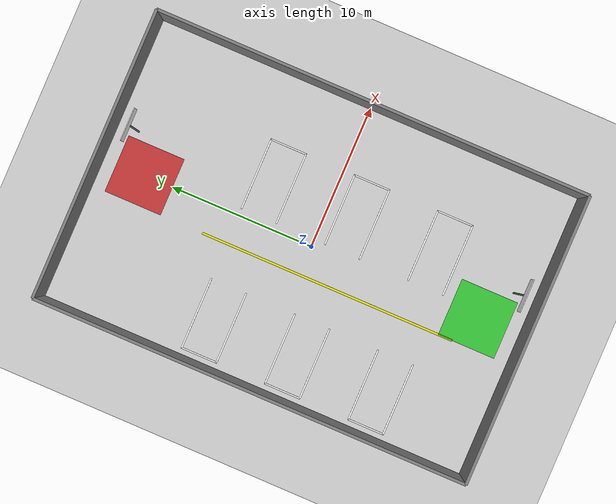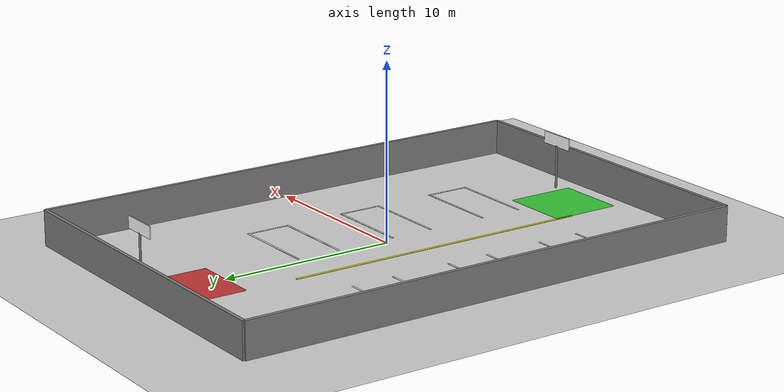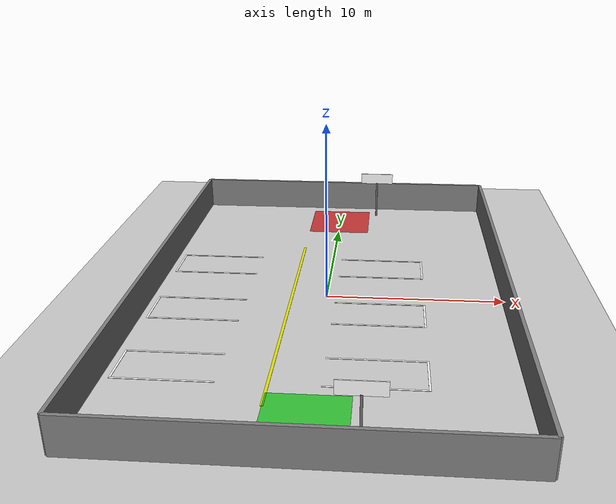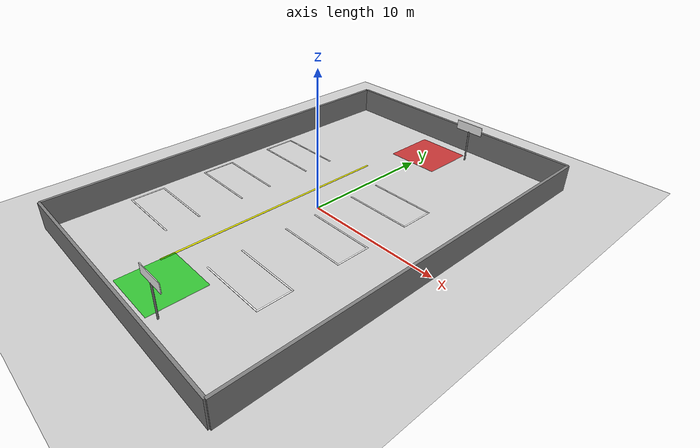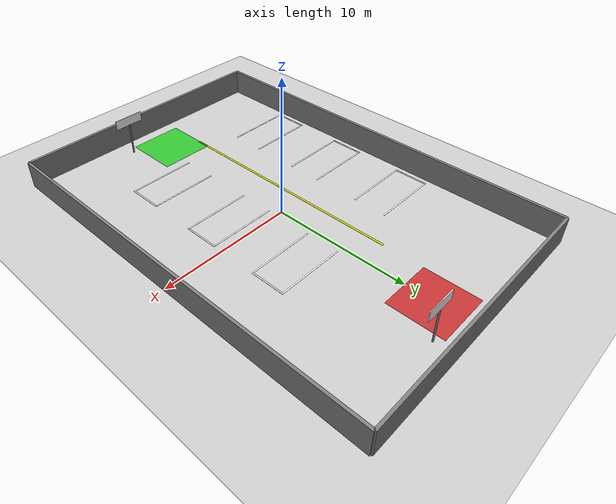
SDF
<sdf version="1.10">
 <world name="parking_world">
  <plugin filename="gz-sim-physics-system" name="gz::sim::systems::Physics"/>
  <plugin filename="gz-sim-scene-broadcaster-system" name="gz::sim::systems::SceneBroadcaster"/>
  <plugin filename="gz-sim-user-commands-system" name="gz::sim::systems::UserCommands"/>
  <plugin filename="gz-sim-sensors-system" name="gz::sim::systems::Sensors">
   <render_engine>ogre2</render_engine>
  </plugin>
  <plugin filename="gz-sim-imu-system" name="gz::sim::systems::Imu"/>
  <physics name="default_physics" type="ode">
   <max_step_size>0.001</max_step_size>
   <real_time_factor>1</real_time_factor>
   <real_time_update_rate>1000</real_time_update_rate>
  </physics>
  <gravity>0 0 -9.8000000000000007</gravity>
  <magnetic_field>5.5644999999999998e-06 2.2875799999999999e-05 -4.2388400000000002e-05</magnetic_field>
  <atmosphere type="adiabatic"/>
  <scene>
   <ambient>0.6 0.6 0.6 1.0</ambient>
   <background>0.53 0.81 0.92 1.0</background>
   <shadows>true</shadows>
   <sky>
    <clouds>
     <speed>3</speed>
     <direction>1.57</direction>
     <humidity>0.7</humidity>
     <mean_size>0.5</mean_size>
     <ambient>0.9 0.9 0.9 1</ambient>
    </clouds>
    <time>10</time>
    <sunrise>6</sunrise>
    <sunset>20</sunset>
   </sky>
  </scene>
  <model name="ground_plane">
   <static>true</static>
   <link name="link">
    <collision name="collision">
     <geometry><plane><normal>0 0 1</normal><size>100 100</size></plane></geometry>
    </collision>
    <visual name="visual">
     <geometry><plane><normal>0 0 1</normal><size>100 100</size></plane></geometry>
     <material>
      <ambient>0.800000012 0.800000012 0.800000012 1</ambient>
      <diffuse>0.800000012 0.800000012 0.800000012 1</diffuse>
      <specular>0.800000012 0.800000012 0.800000012 1</specular>
     </material>
    </visual>
    <inertial>
     <mass>1</mass>
     <inertia><ixx>1</ixx><ixy>0</ixy><ixz>0</ixz><iyy>1</iyy><iyz>0</iyz><izz>1</izz></inertia>
    </inertial>
   </link>
  </model>
  <model name="wall_north">
   <static>true</static>
   <pose>0 15 1 0 0 0</pose>
   <link name="link">
    <collision name="collision"><geometry><box><size>20 0.20000000000000001 2</size></box></geometry></collision>
    <visual name="visual">
     <geometry><box><size>20 0.20000000000000001 2</size></box></geometry>
     <material><ambient>0.5 0.5 0.5 1</ambient><diffuse>0.5 0.5 0.5 1</diffuse></material>
    </visual>
    <inertial>
     <mass>1</mass>
     <inertia><ixx>1</ixx><ixy>0</ixy><ixz>0</ixz><iyy>1</iyy><iyz>0</iyz><izz>1</izz></inertia>
    </inertial>
   </link>
  </model>
  <model name="wall_south">
   <static>true</static>
   <pose>0 -15 1 0 0 0</pose>
   <link name="link">
    <collision name="collision"><geometry><box><size>20 0.20000000000000001 2</size></box></geometry></collision>
    <visual name="visual">
     <geometry><box><size>20 0.20000000000000001 2</size></box></geometry>
     <material><ambient>0.5 0.5 0.5 1</ambient><diffuse>0.5 0.5 0.5 1</diffuse></material>
    </visual>
    <inertial>
     <mass>1</mass>
     <inertia><ixx>1</ixx><ixy>0</ixy><ixz>0</ixz><iyy>1</iyy><iyz>0</iyz><izz>1</izz></inertia>
    </inertial>
   </link>
  </model>
  <model name="wall_east">
   <static>true</static>
   <pose>10 0 1 0 0 0</pose>
   <link name="link">
    <collision name="collision"><geometry><box><size>0.20000000000000001 30 2</size></box></geometry></collision>
    <visual name="visual">
     <geometry><box><size>0.20000000000000001 30 2</size></box></geometry>
     <material><ambient>0.5 0.5 0.5 1</ambient><diffuse>0.5 0.5 0.5 1</diffuse></material>
    </visual>
    <inertial>
     <mass>1</mass>
     <inertia><ixx>1</ixx><ixy>0</ixy><ixz>0</ixz><iyy>1</iyy><iyz>0</iyz><izz>1</izz></inertia>
    </inertial>
   </link>
  </model>
  <model name="wall_west">
   <static>true</static>
   <pose>-10 0 1 0 0 0</pose>
   <link name="link">
    <collision name="collision"><geometry><box><size>0.20000000000000001 30 2</size></box></geometry></collision>
    <visual name="visual">
     <geometry><box><size>0.20000000000000001 30 2</size></box></geometry>
     <material><ambient>0.5 0.5 0.5 1</ambient><diffuse>0.5 0.5 0.5 1</diffuse></material>
    </visual>
    <inertial>
     <mass>1</mass>
     <inertia><ixx>1</ixx><ixy>0</ixy><ixz>0</ixz><iyy>1</iyy><iyz>0</iyz><izz>1</izz></inertia>
    </inertial>
   </link>
  </model>
  <model name="slot_A1_left_line">
   <static>true</static>
   <pose>-7 -8 0.01 0 0 0</pose>
   <link name="link">
    <visual name="visual">
     <pose>0 -1.25 0 0 0 0</pose>
     <geometry><box><size>5 0.10000000000000001 0.02</size></box></geometry>
     <material><ambient>1 1 1 1</ambient><diffuse>1 1 1 1</diffuse></material>
    </visual>
    <inertial>
     <mass>1</mass>
     <inertia><ixx>1</ixx><ixy>0</ixy><ixz>0</ixz><iyy>1</iyy><iyz>0</iyz><izz>1</izz></inertia>
    </inertial>
   </link>
  </model>
  <model name="slot_A1_right_line">
   <static>true</static>
   <pose>-7 -8 0.01 0 0 0</pose>
   <link name="link">
    <visual name="visual">
     <pose>0 1.25 0 0 0 0</pose>
     <geometry><box><size>5 0.10000000000000001 0.02</size></box></geometry>
     <material><ambient>1 1 1 1</ambient><diffuse>1 1 1 1</diffuse></material>
    </visual>
    <inertial>
     <mass>1</mass>
     <inertia><ixx>1</ixx><ixy>0</ixy><ixz>0</ixz><iyy>1</iyy><iyz>0</iyz><izz>1</izz></inertia>
    </inertial>
   </link>
  </model>
  <model name="slot_A1_back_line">
   <static>true</static>
   <pose>-7 -8 0.01 0 0 0</pose>
   <link name="link">
    <visual name="visual">
     <pose>-2.5 0 0 0 0 0</pose>
     <geometry><box><size>0.10000000000000001 2.6000000000000001 0.02</size></box></geometry>
     <material><ambient>1 1 1 1</ambient><diffuse>1 1 1 1</diffuse></material>
    </visual>
    <inertial>
     <mass>1</mass>
     <inertia><ixx>1</ixx><ixy>0</ixy><ixz>0</ixz><iyy>1</iyy><iyz>0</iyz><izz>1</izz></inertia>
    </inertial>
   </link>
  </model>
  <model name="slot_A2_left_line">
   <static>true</static>
   <pose>-7 -2 0.01 0 0 0</pose>
   <link name="link">
    <visual name="visual">
     <pose>0 -1.25 0 0 0 0</pose>
     <geometry><box><size>5 0.10000000000000001 0.02</size></box></geometry>
     <material><ambient>1 1 1 1</ambient><diffuse>1 1 1 1</diffuse></material>
    </visual>
    <inertial>
     <mass>1</mass>
     <inertia><ixx>1</ixx><ixy>0</ixy><ixz>0</ixz><iyy>1</iyy><iyz>0</iyz><izz>1</izz></inertia>
    </inertial>
   </link>
  </model>
  <model name="slot_A2_right_line">
   <static>true</static>
   <pose>-7 -2 0.01 0 0 0</pose>
   <link name="link">
    <visual name="visual">
     <pose>0 1.25 0 0 0 0</pose>
     <geometry><box><size>5 0.10000000000000001 0.02</size></box></geometry>
     <material><ambient>1 1 1 1</ambient><diffuse>1 1 1 1</diffuse></material>
    </visual>
    <inertial>
     <mass>1</mass>
     <inertia><ixx>1</ixx><ixy>0</ixy><ixz>0</ixz><iyy>1</iyy><iyz>0</iyz><izz>1</izz></inertia>
    </inertial>
   </link>
  </model>
  <model name="slot_A2_back_line">
   <static>true</static>
   <pose>-7 -2 0.01 0 0 0</pose>
   <link name="link">
    <visual name="visual">
     <pose>-2.5 0 0 0 0 0</pose>
     <geometry><box><size>0.10000000000000001 2.6000000000000001 0.02</size></box></geometry>
     <material><ambient>1 1 1 1</ambient><diffuse>1 1 1 1</diffuse></material>
    </visual>
    <inertial>
     <mass>1</mass>
     <inertia><ixx>1</ixx><ixy>0</ixy><ixz>0</ixz><iyy>1</iyy><iyz>0</iyz><izz>1</izz></inertia>
    </inertial>
   </link>
  </model>
  <model name="slot_A3_left_line">
   <static>true</static>
   <pose>-7 4 0.01 0 0 0</pose>
   <link name="link">
    <visual name="visual">
     <pose>0 -1.25 0 0 0 0</pose>
     <geometry><box><size>5 0.10000000000000001 0.02</size></box></geometry>
     <material><ambient>1 1 1 1</ambient><diffuse>1 1 1 1</diffuse></material>
    </visual>
    <inertial>
     <mass>1</mass>
     <inertia><ixx>1</ixx><ixy>0</ixy><ixz>0</ixz><iyy>1</iyy><iyz>0</iyz><izz>1</izz></inertia>
    </inertial>
   </link>
  </model>
  <model name="slot_A3_right_line">
   <static>true</static>
   <pose>-7 4 0.01 0 0 0</pose>
   <link name="link">
    <visual name="visual">
     <pose>0 1.25 0 0 0 0</pose>
     <geometry><box><size>5 0.10000000000000001 0.02</size></box></geometry>
     <material><ambient>1 1 1 1</ambient><diffuse>1 1 1 1</diffuse></material>
    </visual>
    <inertial>
     <mass>1</mass>
     <inertia><ixx>1</ixx><ixy>0</ixy><ixz>0</ixz><iyy>1</iyy><iyz>0</iyz><izz>1</izz></inertia>
    </inertial>
   </link>
  </model>
  <model name="slot_A3_back_line">
   <static>true</static>
   <pose>-7 4 0.01 0 0 0</pose>
   <link name="link">
    <visual name="visual">
     <pose>-2.5 0 0 0 0 0</pose>
     <geometry><box><size>0.10000000000000001 2.6000000000000001 0.02</size></box></geometry>
     <material><ambient>1 1 1 1</ambient><diffuse>1 1 1 1</diffuse></material>
    </visual>
    <inertial>
     <mass>1</mass>
     <inertia><ixx>1</ixx><ixy>0</ixy><ixz>0</ixz><iyy>1</iyy><iyz>0</iyz><izz>1</izz></inertia>
    </inertial>
   </link>
  </model>
  <model name="slot_B1_left_line">
   <static>true</static>
   <pose>3 -8 0.01 0 0 0</pose>
   <link name="link">
    <visual name="visual">
     <pose>0 -1.25 0 0 0 0</pose>
     <geometry><box><size>5 0.10000000000000001 0.02</size></box></geometry>
     <material><ambient>1 1 1 1</ambient><diffuse>1 1 1 1</diffuse></material>
    </visual>
    <inertial>
     <mass>1</mass>
     <inertia><ixx>1</ixx><ixy>0</ixy><ixz>0</ixz><iyy>1</iyy><iyz>0</iyz><izz>1</izz></inertia>
    </inertial>
   </link>
  </model>
  <model name="slot_B1_right_line">
   <static>true</static>
   <pose>3 -8 0.01 0 0 0</pose>
   <link name="link">
    <visual name="visual">
     <pose>0 1.25 0 0 0 0</pose>
     <geometry><box><size>5 0.10000000000000001 0.02</size></box></geometry>
     <material><ambient>1 1 1 1</ambient><diffuse>1 1 1 1</diffuse></material>
    </visual>
    <inertial>
     <mass>1</mass>
     <inertia><ixx>1</ixx><ixy>0</ixy><ixz>0</ixz><iyy>1</iyy><iyz>0</iyz><izz>1</izz></inertia>
    </inertial>
   </link>
  </model>
  <model name="slot_B1_back_line">
   <static>true</static>
   <pose>3 -8 0.01 0 0 0</pose>
   <link name="link">
    <visual name="visual">
     <pose>2.5 0 0 0 0 0</pose>
     <geometry><box><size>0.10000000000000001 2.6000000000000001 0.02</size></box></geometry>
     <material><ambient>1 1 1 1</ambient><diffuse>1 1 1 1</diffuse></material>
    </visual>
    <inertial>
     <mass>1</mass>
     <inertia><ixx>1</ixx><ixy>0</ixy><ixz>0</ixz><iyy>1</iyy><iyz>0</iyz><izz>1</izz></inertia>
    </inertial>
   </link>
  </model>
  <model name="slot_B2_left_line">
   <static>true</static>
   <pose>3 -2 0.01 0 0 0</pose>
   <link name="link">
    <visual name="visual">
     <pose>0 -1.25 0 0 0 0</pose>
     <geometry><box><size>5 0.10000000000000001 0.02</size></box></geometry>
     <material><ambient>1 1 1 1</ambient><diffuse>1 1 1 1</diffuse></material>
    </visual>
    <inertial>
     <mass>1</mass>
     <inertia><ixx>1</ixx><ixy>0</ixy><ixz>0</ixz><iyy>1</iyy><iyz>0</iyz><izz>1</izz></inertia>
    </inertial>
   </link>
  </model>
  <model name="slot_B2_right_line">
   <static>true</static>
   <pose>3 -2 0.01 0 0 0</pose>
   <link name="link">
    <visual name="visual">
     <pose>0 1.25 0 0 0 0</pose>
     <geometry><box><size>5 0.10000000000000001 0.02</size></box></geometry>
     <material><ambient>1 1 1 1</ambient><diffuse>1 1 1 1</diffuse></material>
    </visual>
    <inertial>
     <mass>1</mass>
     <inertia><ixx>1</ixx><ixy>0</ixy><ixz>0</ixz><iyy>1</iyy><iyz>0</iyz><izz>1</izz></inertia>
    </inertial>
   </link>
  </model>
  <model name="slot_B2_back_line">
   <static>true</static>
   <pose>3 -2 0.01 0 0 0</pose>
   <link name="link">
    <visual name="visual">
     <pose>2.5 0 0 0 0 0</pose>
     <geometry><box><size>0.10000000000000001 2.6000000000000001 0.02</size></box></geometry>
     <material><ambient>1 1 1 1</ambient><diffuse>1 1 1 1</diffuse></material>
    </visual>
    <inertial>
     <mass>1</mass>
     <inertia><ixx>1</ixx><ixy>0</ixy><ixz>0</ixz><iyy>1</iyy><iyz>0</iyz><izz>1</izz></inertia>
    </inertial>
   </link>
  </model>
  <model name="slot_B3_left_line">
   <static>true</static>
   <pose>3 4 0.01 0 0 0</pose>
   <link name="link">
    <visual name="visual">
     <pose>0 -1.25 0 0 0 0</pose>
     <geometry><box><size>5 0.10000000000000001 0.02</size></box></geometry>
     <material><ambient>1 1 1 1</ambient><diffuse>1 1 1 1</diffuse></material>
    </visual>
    <inertial>
     <mass>1</mass>
     <inertia><ixx>1</ixx><ixy>0</ixy><ixz>0</ixz><iyy>1</iyy><iyz>0</iyz><izz>1</izz></inertia>
    </inertial>
   </link>
  </model>
  <model name="slot_B3_right_line">
   <static>true</static>
   <pose>3 4 0.01 0 0 0</pose>
   <link name="link">
    <visual name="visual">
     <pose>0 1.25 0 0 0 0</pose>
     <geometry><box><size>5 0.10000000000000001 0.02</size></box></geometry>
     <material><ambient>1 1 1 1</ambient><diffuse>1 1 1 1</diffuse></material>
    </visual>
    <inertial>
     <mass>1</mass>
     <inertia><ixx>1</ixx><ixy>0</ixy><ixz>0</ixz><iyy>1</iyy><iyz>0</iyz><izz>1</izz></inertia>
    </inertial>
   </link>
  </model>
  <model name="slot_B3_back_line">
   <static>true</static>
   <pose>3 4 0.01 0 0 0</pose>
   <link name="link">
    <visual name="visual">
     <pose>2.5 0 0 0 0 0</pose>
     <geometry><box><size>0.10000000000000001 2.6000000000000001 0.02</size></box></geometry>
     <material><ambient>1 1 1 1</ambient><diffuse>1 1 1 1</diffuse></material>
    </visual>
    <inertial>
     <mass>1</mass>
     <inertia><ixx>1</ixx><ixy>0</ixy><ixz>0</ixz><iyy>1</iyy><iyz>0</iyz><izz>1</izz></inertia>
    </inertial>
   </link>
  </model>
  <model name="aisle_center_line">
   <static>true</static>
   <pose>-2 -2 0.01 0 0 0</pose>
   <link name="link">
    <visual name="visual">
     <geometry><box><size>0.14999999999999999 18 0.02</size></box></geometry>
     <material>
      <ambient>0.899999976 0.899999976 0 1</ambient>
      <diffuse>0.899999976 0.899999976 0 1</diffuse>
     </material>
    </visual>
    <inertial>
     <mass>1</mass>
     <inertia><ixx>1</ixx><ixy>0</ixy><ixz>0</ixz><iyy>1</iyy><iyz>0</iyz><izz>1</izz></inertia>
    </inertial>
   </link>
  </model>
  <model name="pickup_zone">
   <static>true</static>
   <pose>0 -12 0 0 0 0</pose>
   <link name="marker">
    <pose>0 0 0.02 0 0 0</pose>
    <visual name="visual">
     <geometry><box><size>4 4 0.040000000000000001</size></box></geometry>
     <material>
      <ambient>0 0.800000012 0 0.699999988</ambient>
      <diffuse>0 0.800000012 0 0.699999988</diffuse>
     </material>
    </visual>
    <inertial>
     <mass>1</mass>
     <inertia><ixx>1</ixx><ixy>0</ixy><ixz>0</ixz><iyy>1</iyy><iyz>0</iyz><izz>1</izz></inertia>
    </inertial>
   </link>
  </model>
  <model name="dropoff_zone">
   <static>true</static>
   <pose>0 12 0 0 0 0</pose>
   <link name="marker">
    <pose>0 0 0.02 0 0 0</pose>
    <visual name="visual">
     <geometry><box><size>4 4 0.040000000000000001</size></box></geometry>
     <material>
      <ambient>0.800000012 0 0 0.699999988</ambient>
      <diffuse>0.800000012 0 0 0.699999988</diffuse>
     </material>
    </visual>
    <inertial>
     <mass>1</mass>
     <inertia><ixx>1</ixx><ixy>0</ixy><ixz>0</ixz><iyy>1</iyy><iyz>0</iyz><izz>1</izz></inertia>
    </inertial>
   </link>
  </model>
  <light name="sun" type="directional">
   <pose>0 0 10 0 0 0</pose>
   <intensity>1.0</intensity>
   <direction>-0.3 0.2 -1.0</direction>
   <diffuse>1.0 0.95 0.8 1</diffuse>
   <specular>0.3 0.3 0.3 1</specular>
   <attenuation>
    <range>1000</range>
    <linear>0.01</linear>
    <constant>0.90000000000000002</constant>
    <quadratic>0.001</quadratic>
   </attenuation>
   <spot><inner_angle>0</inner_angle><outer_angle>0</outer_angle><falloff>0</falloff></spot>
  </light>
  <model name="pickup_zone_sign">
   <static>true</static>
   <pose>2.5 -13.5 0 0 0 3.1416</pose>
   <link name="pole">
    <pose>0 0 1.25 0 0 0</pose>
    <visual name="pole_vis">
     <geometry><cylinder><radius>0.06</radius><length>2.5</length></cylinder></geometry>
     <material>
      <ambient>0.35 0.35 0.35 1</ambient>
      <diffuse>0.45 0.45 0.45 1</diffuse>
      <specular>0.1 0.1 0.1 1</specular>
      <emissive>0 0 0 1</emissive>
     </material>
    </visual>
   </link>
   <link name="board">
    <pose>0 0 2.8 0 0 0</pose>
    <visual name="board_vis">
     <geometry><box><size>2.2 0.05 0.7</size></box></geometry>
     <material>
      <ambient>1 1 1 1</ambient>
      <diffuse>1 1 1 1</diffuse>
      <specular>0.1 0.1 0.1 1</specular>
      <emissive>0 0 0 1</emissive>
      <pbr>
       <metal>
        <albedo_map>file:///home/namrata/Documents/ros2_ws/src/valet_parking_amr/my_robot_bringup/worlds/textures/pickup_sign.png</albedo_map>
        <metalness>0.0</metalness>
        <roughness>0.8</roughness>
       </metal>
      </pbr>
     </material>
    </visual>
   </link>
  </model>
  <model name="dropoff_zone_sign">
   <static>true</static>
   <pose>2.5 13.5 0 0 0 0</pose>
   <link name="pole">
    <pose>0 0 1.25 0 0 0</pose>
    <visual name="pole_vis">
     <geometry><cylinder><radius>0.06</radius><length>2.5</length></cylinder></geometry>
     <material>
      <ambient>0.35 0.35 0.35 1</ambient>
      <diffuse>0.45 0.45 0.45 1</diffuse>
      <specular>0.1 0.1 0.1 1</specular>
      <emissive>0 0 0 1</emissive>
     </material>
    </visual>
   </link>
   <link name="board">
    <pose>0 0 2.8 0 0 0</pose>
    <visual name="board_vis">
     <geometry><box><size>2.2 0.05 0.7</size></box></geometry>
     <material>
      <ambient>1 1 1 1</ambient>
      <diffuse>1 1 1 1</diffuse>
      <specular>0.1 0.1 0.1 1</specular>
      <emissive>0 0 0 1</emissive>
      <pbr>
       <metal>
        <albedo_map>file:///home/namrata/Documents/ros2_ws/src/valet_parking_amr/my_robot_bringup/worlds/textures/dropoff_sign.png</albedo_map>
        <metalness>0.0</metalness>
        <roughness>0.8</roughness>
       </metal>
      </pbr>
     </material>
    </visual>
   </link>
  </model>
 </world>
</sdf>
